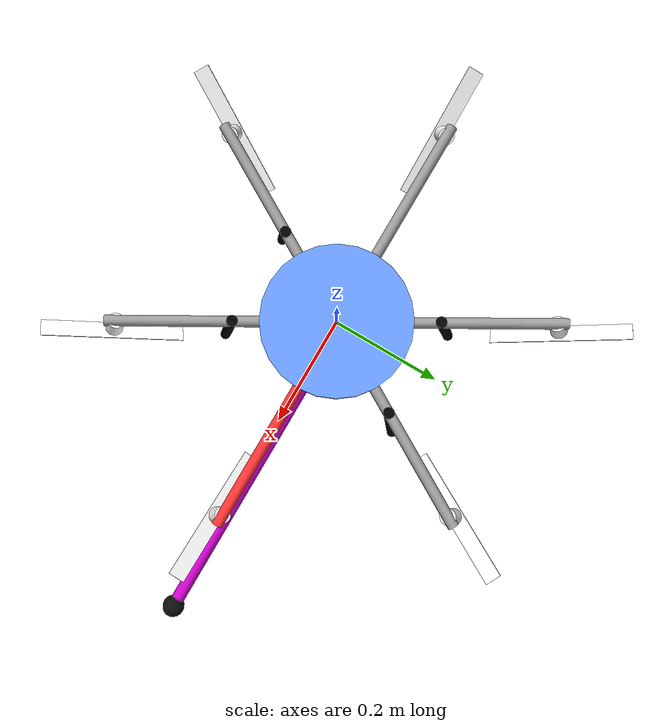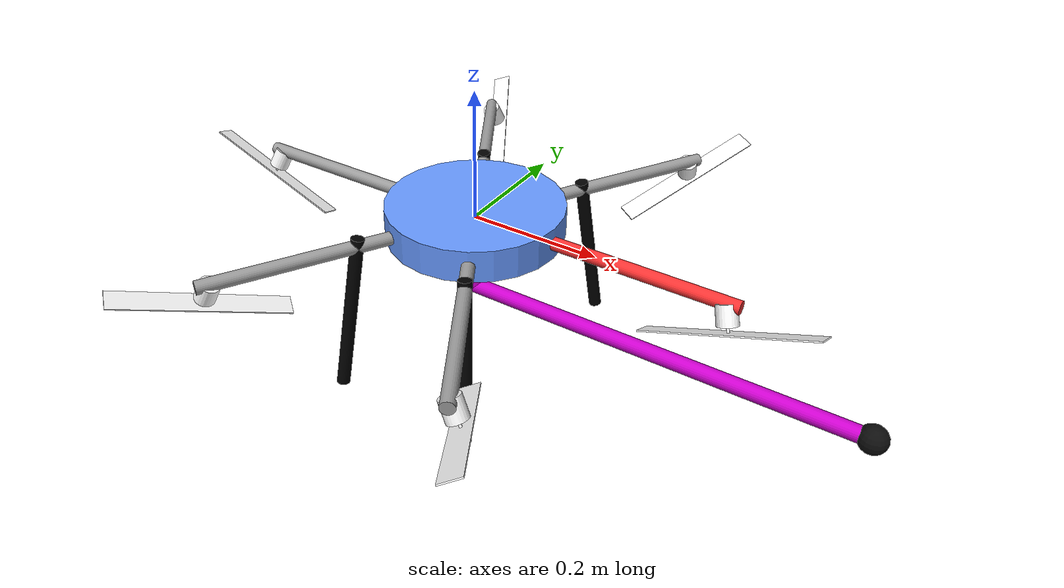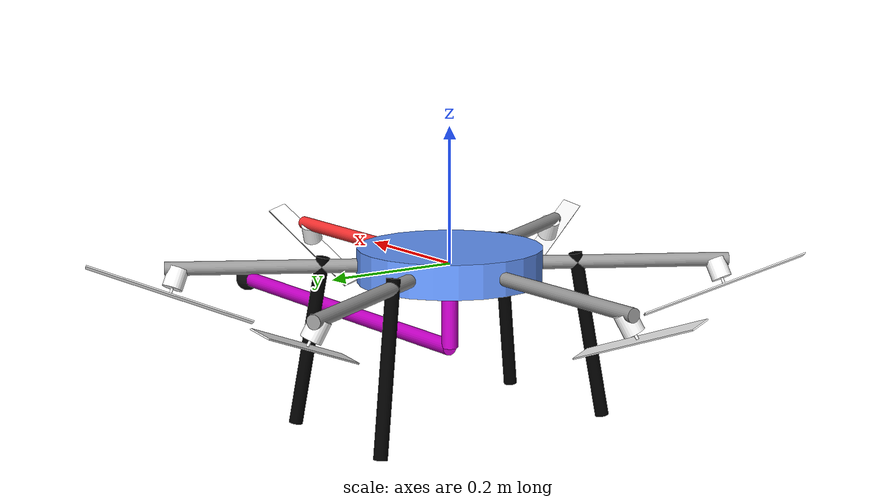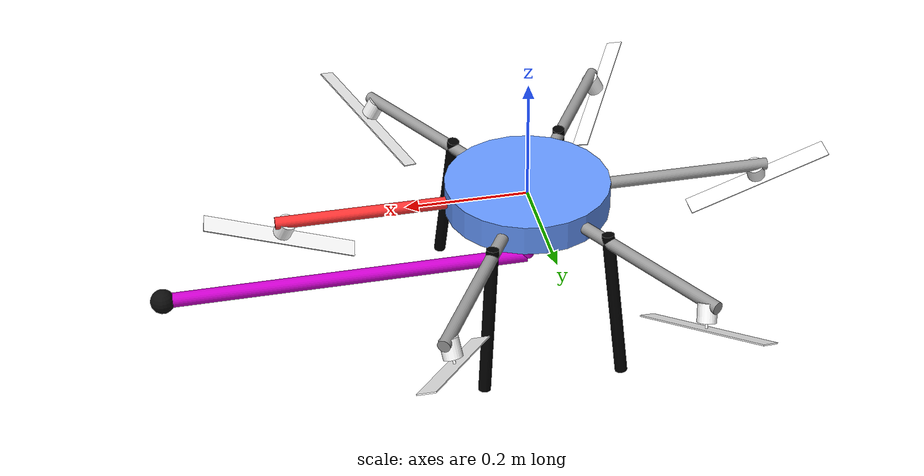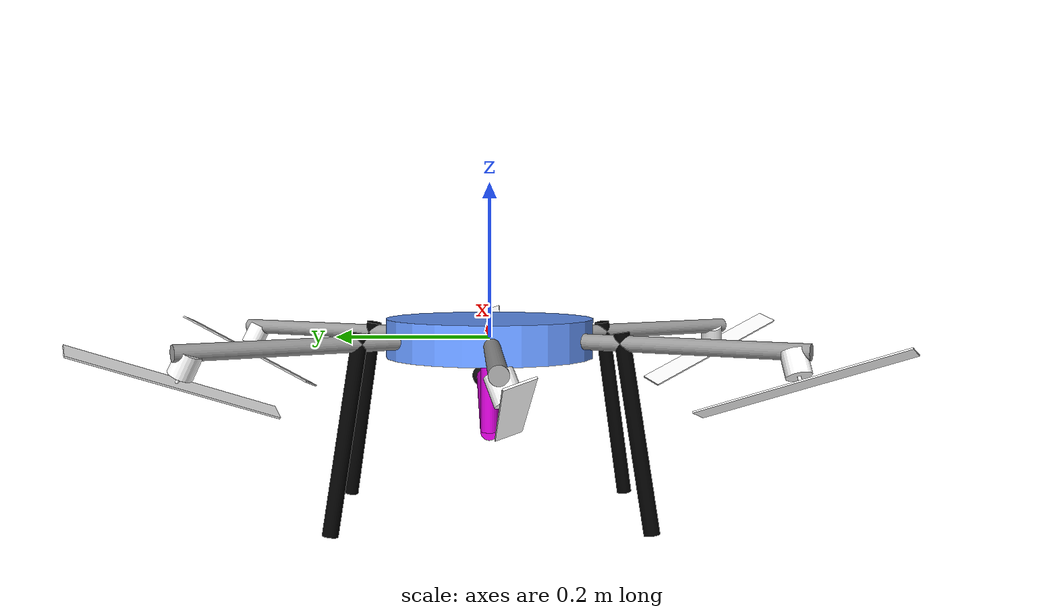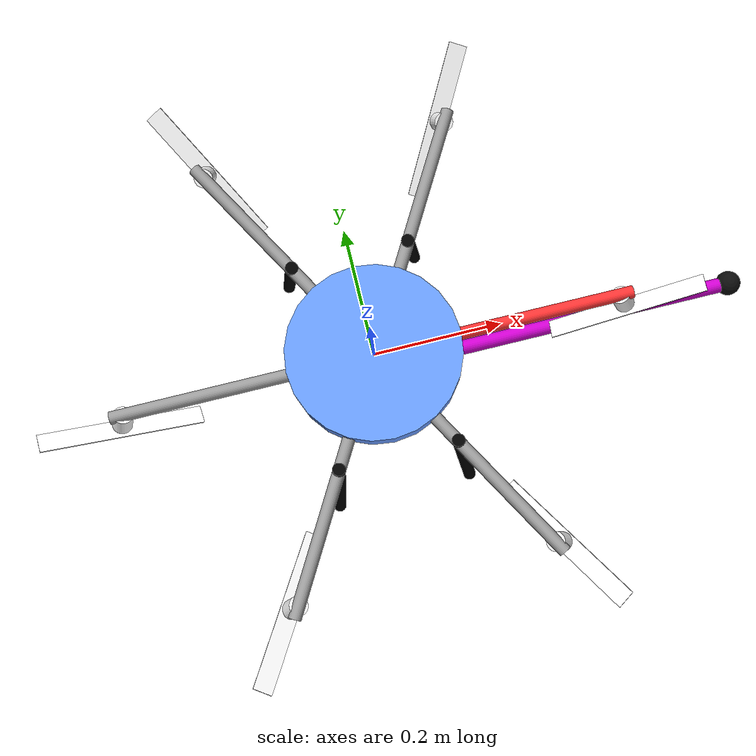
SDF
<?xml version="1.0" ?>

<sdf version="1.5">
  <model name="mrsim-tilthex">
    <link name="base">
      <inertial>
        <mass>2.3</mass>
        <inertia>
          <ixx>0.0115</ixx><ixy>0</ixy><ixz>0</ixz>
          <iyy>0.0114</iyy><iyz>0</iyz>
          <izz>0.0194</izz>
        </inertia>
      </inertial>

      <collision name="base">
	<pose>0 0 -0.05 0 0 0</pose>
        <geometry>
          <cylinder><radius>0.1354</radius><length>0.15</length></cylinder>
        </geometry>
      </collision>
      <!-- three spheres to make contact stable -->
      <collision name="land_1">
        <pose>0.2 0 -0.21 0 0 0</pose>
        <geometry>
          <sphere><radius>0.03</radius></sphere>
        </geometry>
      </collision>
      <collision name="land_2">
        <pose>-0.1 0.173 -0.21 0 0 0</pose>
        <geometry>
          <sphere><radius>0.03</radius></sphere>
        </geometry>
      </collision>
      <collision name="land_3">
        <pose>-0.1 -0.173 -0.21 0 0 0</pose>
        <geometry>
          <sphere><radius>0.03</radius></sphere>
        </geometry>
      </collision>

      <visual name="body">
        <geometry>
          <cylinder><radius>0.1354</radius><length>0.05</length></cylinder>
        </geometry>
        <material>
          <ambient>0.4 0.6 1.0 1</ambient>
          <diffuse>0.4 0.6 1.0 1</diffuse>
        </material>
      </visual>

      <visual name="lander-1">
        <pose>0.1025 0.1776 -0.11 3.1416 -0.1736 1.0472</pose>
        <geometry>
          <cylinder><radius>0.01</radius><length>0.25</length></cylinder>
        </geometry>
        <material>
          <ambient>0 0 0 1.0</ambient>
          <diffuse>0 0 0 1.0</diffuse>
        </material>
      </visual>

      <visual name="lander-2">
        <pose>-0.1025 0.1776 -0.11 3.1416 -0.1736 2.0944</pose>
        <geometry>
          <cylinder><radius>0.01</radius><length>0.25</length></cylinder>
        </geometry>
        <material>
          <ambient>0 0 0 1.0</ambient>
          <diffuse>0 0 0 1.0</diffuse>
        </material>
      </visual>

      <visual name="lander-3">
       <pose>-0.1025 -0.1776 -0.11 3.1416 0.1736 1.0472</pose>
        <geometry>
          <cylinder><radius>0.01</radius><length>0.25</length></cylinder>
        </geometry>
        <material>
          <ambient>0 0 0 1.0</ambient>
          <diffuse>0 0 0 1.0</diffuse>
        </material>
      </visual>

      <visual name="lander-4">
        <pose>0.1025 -0.1776 -0.11 3.1416 0.1736 2.0944</pose>
        <geometry>
          <cylinder><radius>0.01</radius><length>0.25</length></cylinder>
        </geometry>
        <material>
          <ambient>0 0 0 1.0</ambient>
          <diffuse>0 0 0 1.0</diffuse>
        </material>
      </visual>

      <visual name="arm-1">
        <pose>0.2150 0 0 0 1.5708 0</pose>
        <geometry>
          <cylinder><radius>0.01</radius><length>0.38998</length></cylinder>
        </geometry>
        <material>
          <ambient>1.0 0.2 0.2 1.0</ambient>
          <diffuse>1.0 0.2 0.2 1.0</diffuse>
        </material>
      </visual>
      <visual name="arm-2">
        <pose>0.1025 0.1776 0 0 1.5708 1.0472</pose>
        <geometry>
          <cylinder><radius>0.01</radius><length>0.40998</length></cylinder>
        </geometry>
        <material>
          <ambient>0.6 0.6 0.6 1</ambient>
          <diffuse>0.6 0.6 0.6 1</diffuse>
        </material>
      </visual>
      <visual name="arm-3">
        <pose>-0.1025 0.1776 0 0 1.5708 2.0944</pose>
        <geometry>
          <cylinder><radius>0.01</radius><length>0.40998</length></cylinder>
        </geometry>
        <material>
          <ambient>0.6 0.6 0.6 1</ambient>
          <diffuse>0.6 0.6 0.6 1</diffuse>
        </material>
      </visual>
      <visual name="arm-4">
        <pose>-0.2150 0 0 0 1.5708 0</pose>
        <geometry>
          <cylinder><radius>0.01</radius><length>0.38998</length></cylinder>
        </geometry>
        <material>
          <ambient>0.6 0.6 0.6 1</ambient>
          <diffuse>0.6 0.6 0.6 1</diffuse>
        </material>
      </visual>
      <visual name="arm-5">
        <pose>-0.1025 -0.1776 0 0 1.5708 -2.0944</pose>
        <geometry>
          <cylinder><radius>0.01</radius><length>0.40998</length></cylinder>
        </geometry>
        <material>
          <ambient>0.6 0.6 0.6 1</ambient>
          <diffuse>0.6 0.6 0.6 1</diffuse>
        </material>
      </visual>
      <visual name="arm-6">
        <pose>0.1025 -0.1776 0 0 1.5708 -1.0472</pose>
        <geometry>
          <cylinder><radius>0.01</radius><length>0.40998</length></cylinder>
        </geometry>
        <material>
          <ambient>0.6 0.6 0.6 1</ambient>
          <diffuse>0.6 0.6 0.6 1</diffuse>
        </material>
      </visual>

      <!-- End-effector (assignment 06a)                                 -->
      <!-- L-shape: vertical bar from disk bottom, then horizontal bar   -->
      <!-- along body x axis. Tip extends past arm length (0.39m).       -->
      <!-- Same mounting logic as landers: link-frame, pose offsets.     -->

      <!-- Vertical bar: short stub from disk bottom (z=-0.025) to z=-0.125 -->
      <!-- length 0.10, midpoint z=-0.075, Z-aligned (no rotation)          -->
      <visual name="ee-vbar">
        <pose>0 0 -0.075 0 0 0</pose>
        <geometry>
          <cylinder><radius>0.012</radius><length>0.10</length></cylinder>
        </geometry>
        <material>
          <ambient>0.6 0.0 0.6 1</ambient>
          <diffuse>0.8 0.0 0.8 1</diffuse>
          <specular>0.5 0.0 0.5 1</specular>
          <emissive>0.2 0.0 0.2 1</emissive>
        </material>
      </visual>
      <collision name="ee-vbar-col">
        <pose>0 0 -0.075 0 0 0</pose>
        <geometry>
          <cylinder><radius>0.012</radius><length>0.10</length></cylinder>
        </geometry>
      </collision>

      <!-- Horizontal bar: from x=0 to x=0.6 at z=-0.125, X-aligned         -->
      <!-- length 0.6, midpoint x=0.3 (=length/2 so bar starts at x=0)      -->
      <visual name="ee-hbar">
        <pose>0.3 0 -0.125 0 1.5708 0</pose>
        <geometry>
          <cylinder><radius>0.012</radius><length>0.60</length></cylinder>
        </geometry>
        <material>
          <ambient>0.6 0.0 0.6 1</ambient>
          <diffuse>0.8 0.0 0.8 1</diffuse>
          <specular>0.5 0.0 0.5 1</specular>
          <emissive>0.2 0.0 0.2 1</emissive>
        </material>
      </visual>
      <collision name="ee-hbar-col">
        <pose>0.3 0 -0.125 0 1.5708 0</pose>
        <geometry>
          <cylinder><radius>0.012</radius><length>0.6</length></cylinder>
        </geometry>
      </collision>

      <!-- Contact sensor tip: black sphere with friction matching wall    -->
      <visual name="ee-tip">
        <pose>0.6 0 -0.125 0 0 0</pose>
        <geometry>
          <sphere><radius>0.02</radius></sphere>
        </geometry>
        <material>
          <ambient>0.0 0.0 0.0 1</ambient>
          <diffuse>0.05 0.05 0.05 1</diffuse>
        </material>
      </visual>
      <collision name="ee-tip-col">
        <pose>0.6 0 -0.125 0 0 0</pose>
        <geometry>
          <sphere><radius>0.02</radius></sphere>
        </geometry>
        <surface>
          <friction>
            <ode><mu>0.5</mu><mu2>0.5</mu2></ode>
          </friction>
          <contact>
            <ode>
              <kp>100.0</kp>
              <kd>20.0</kd>
            </ode>
          </contact>
        </surface>
      </collision>

      <!-- Contact sensor on end-effector tip -->
      <sensor name="ee_contact_sensor" type="contact">
        <always_on>true</always_on>
        <update_rate>100</update_rate>
        <contact>
          <collision>ee-tip-col</collision>
        </contact>
      </sensor>
    </link>

    <include>
      <uri>model://mrsim-rotor</uri>
      <name>rotor-1</name>
      <pose>0.38998 0 0 2.7925 -0.3491 0</pose>
    </include>
    <joint name="motor-1" type="revolute">
      <parent>base</parent>
      <child>rotor-1::propeller</child>
      <axis><xyz>0 0 -1</xyz></axis>
    </joint>

    <include>
      <uri>model://mrsim-rotor</uri>
      <name>rotor-2</name>
      <pose>0.195 0.3377 0 -2.7925 -0.3491 1.0472</pose>
    </include>
    <joint name="motor-2" type="revolute">
      <parent>base</parent>
      <child>rotor-2::propeller</child>
      <axis><xyz>0 0 -1</xyz></axis>
    </joint>

    <include>
      <uri>model://mrsim-rotor</uri>
      <name>rotor-3</name>
      <pose>-0.195 0.3377 0 2.7925 -0.3491 2.0944</pose>
    </include>
    <joint name="motor-3" type="revolute">
      <parent>base</parent>
      <child>rotor-3::propeller</child>
      <axis><xyz>0 0 -1</xyz></axis>
    </joint>

    <include>
      <uri>model://mrsim-rotor</uri>
      <name>rotor-4</name>
      <pose>-0.38998 0 0 -3.4907 0.3491 0</pose>
    </include>
    <joint name="motor-4" type="revolute">
      <parent>base</parent>
      <child>rotor-4::propeller</child>
      <axis><xyz>0 0 -1</xyz></axis>
    </joint>

    <include>
      <uri>model://mrsim-rotor</uri>
      <name>rotor-5</name>
      <pose>-0.195 -0.3377 0 -2.7925 0.3491 1.0472</pose>
    </include>
    <joint name="motor-5" type="revolute">
      <parent>base</parent>
      <child>rotor-5::propeller</child>
      <axis><xyz>0 0 -1</xyz></axis>
    </joint>

    <include>
      <uri>model://mrsim-rotor</uri>
      <name>rotor-6</name>
      <pose>0.195 -0.3377 0 2.7925 0.3491 2.0944</pose>
    </include>
    <joint name="motor-6" type="revolute">
      <parent>base</parent>
      <child>rotor-6::propeller</child>
      <axis><xyz>0 0 -1</xyz></axis>
    </joint>

    <plugin name="mrsim" filename="mrsim-gazebo.so">
      <link>base</link>

      <rotors>
        <noise>0.03</noise>
        <cf>9.9016e-4</cf>
        <ct>1.9e-5</ct>
        <vfxy>0.5</vfxy><vfz>0.5</vfz>
        <vtxy>0.5</vtxy><vtz>0.5</vtz>

        <rotor><joint spin="cw">motor-1</joint></rotor>
        <rotor><joint spin="ccw">motor-2</joint></rotor>
        <rotor><joint spin="cw">motor-3</joint></rotor>
        <rotor><joint spin="ccw">motor-4</joint></rotor>
        <rotor><joint spin="cw">motor-5</joint></rotor>
        <rotor><joint spin="ccw">motor-6</joint></rotor>
      </rotors>
    </plugin>
</model>
</sdf>

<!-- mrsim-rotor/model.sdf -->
<sdf version="1.5">
  <model name="mrsim-rotor">
    <link name="propeller">
      <inertial>
        <mass>0.07</mass>
        <inertia>
          <ixx>4e-5</ixx><ixy>0</ixy><ixz>0</ixz>
          <iyy>4e-5</iyy><iyz>0</iyz>
          <izz>8e-5</izz>
        </inertia>
      </inertial>

      <collision name="collision">
        <pose>0 0 0.04 0 0 0</pose>
        <geometry>
          <cylinder><radius>0.127</radius><length>0.002</length></cylinder>
        </geometry>
      </collision>

      <visual name="motor">
        <pose>0 0 0.015 0 0 0</pose>
        <geometry>
          <cylinder><radius>0.015</radius><length>0.03</length></cylinder>
        </geometry>
        <material>
          <ambient>0.1 0.1 0.1 1</ambient>
          <diffuse>1.0 1.0 1.0 1</diffuse>
        </material>
      </visual>

      <visual name="axle">
        <pose>0 0 0.035 0 0 0</pose>
        <geometry>
          <cylinder><radius>0.002</radius><length>0.01</length></cylinder>
        </geometry>
        <material>
          <ambient>0.1 0.1 0.1 1</ambient>
          <diffuse>1.0 1.0 1.0 1</diffuse>
        </material>
      </visual>

      <visual name="blade">
        <pose>0 0 0.04 0 0 0</pose>
        <geometry>
          <box><size>0.25 0.03 0.002</size></box>
        </geometry>
        <material>
          <ambient>0.1 0.1 0.1 1</ambient>
          <diffuse>1.0 1.0 1.0 1</diffuse>
        </material>
      </visual>
    </link>
  </model>
</sdf>
